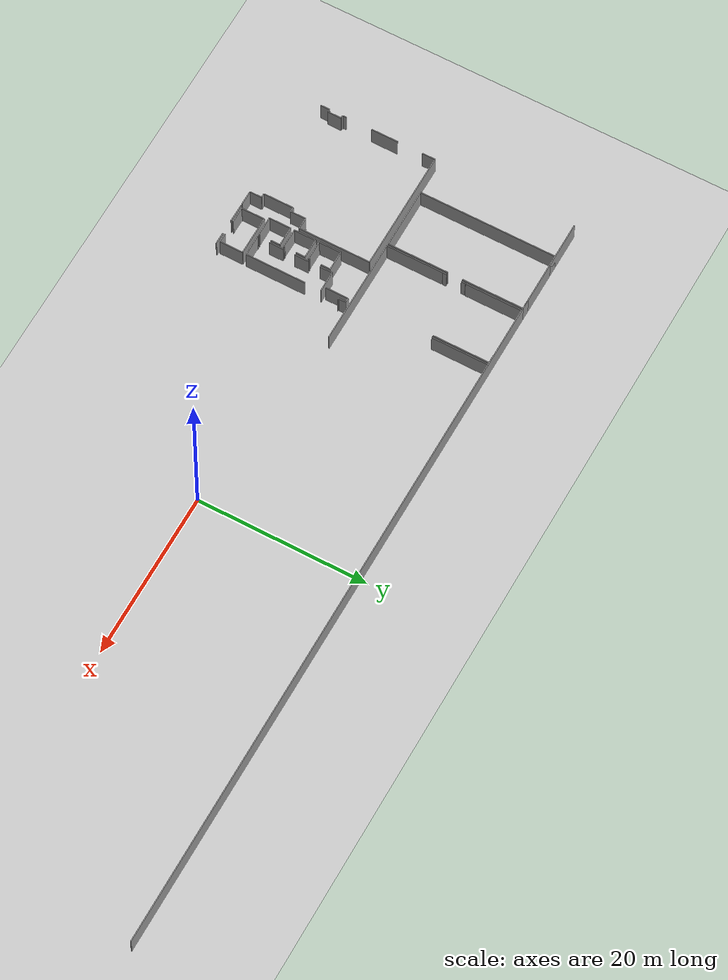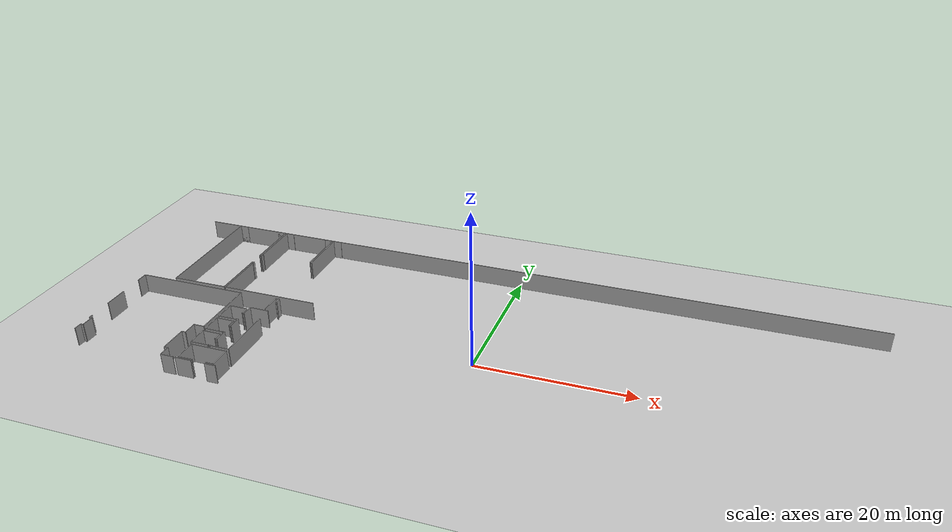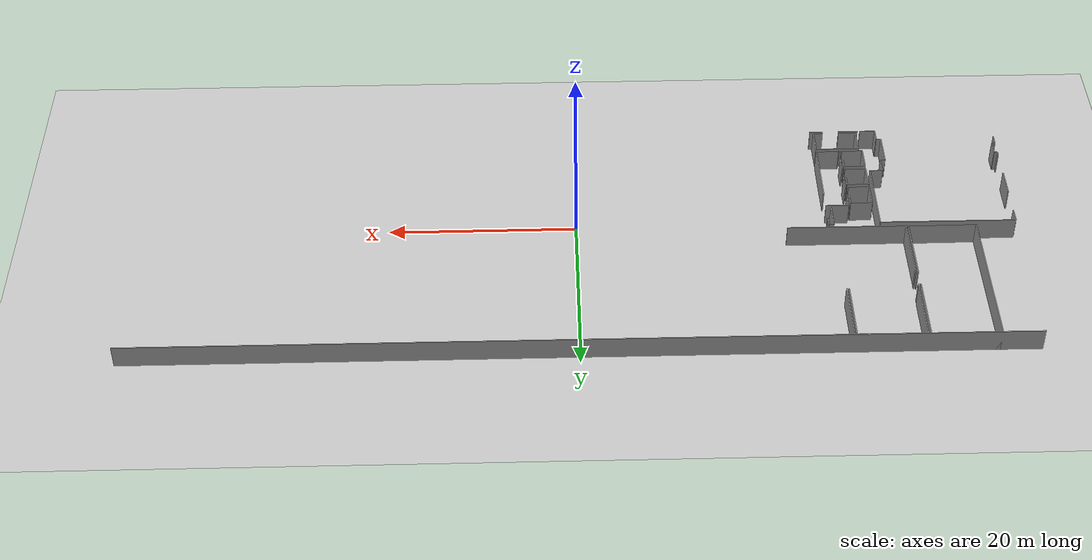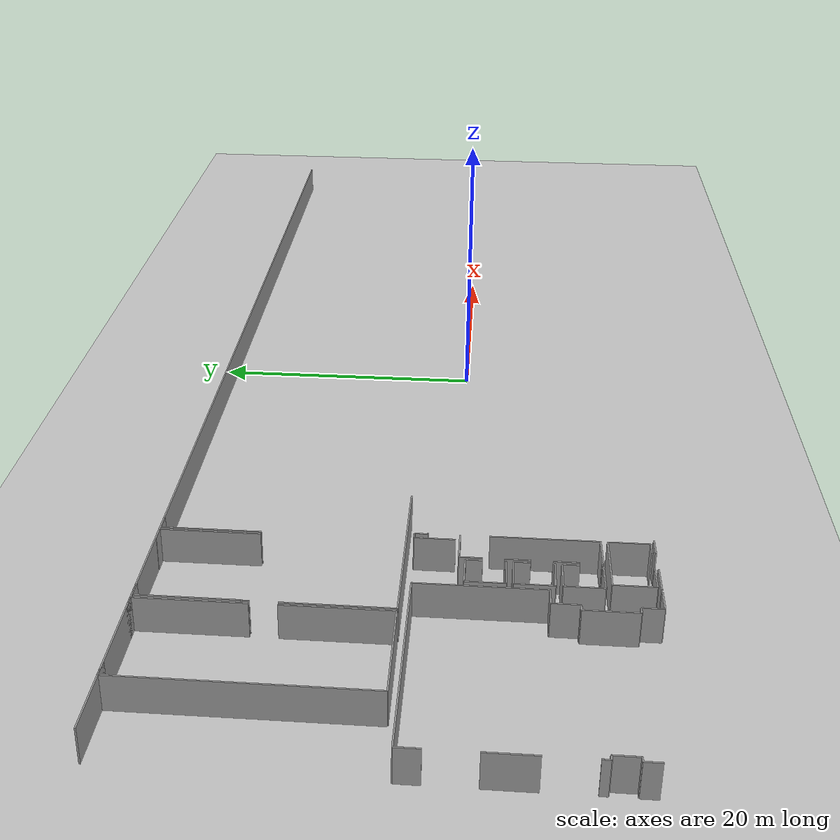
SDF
<sdf version="1.6">
 <world name="default">
  <model name="ground_plane">
   <static>1</static>
   <link name="link">
    <collision name="collision">
     <geometry><plane><normal>0 0 1</normal><size>100 100</size></plane></geometry>
     <surface><friction><ode><mu>100</mu><mu2>50</mu2></ode></friction></surface>
    </collision>
    <visual name="visual">
     <cast_shadows>0</cast_shadows>
     <geometry><plane><normal>0 0 1</normal><size>100 100</size></plane></geometry>
     <material>
      <script><uri>file://media/materials/scripts/gazebo.material</uri><name>Gazebo/Grey</name></script>
     </material>
    </visual>
   </link>
  </model>
  <model name="50045232">
   <static>1</static>
   <link name="Wall_0">
    <collision name="Wall_0_Collision">
     <geometry><box><size>16.1783140181 0.1 2.5</size></box></geometry>
     <pose>8.08915700905 0 1.25 0 0 0</pose>
    </collision>
    <visual name="Wall_0_Visual">
     <pose>8.08915700905 0 1.25 0 0 0</pose>
     <geometry><box><size>16.1783140181 0.1 2.5</size></box></geometry>
     <material>
      <script><uri>file://media/materials/scripts/gazebo.material</uri><name>Gazebo/Grey</name></script>
      <ambient>1 1 1 1</ambient>
     </material>
    </visual>
    <pose>4.34278456898 -16.1783140181 0 0 0 1.57079632679</pose>
   </link>
   <link name="Wall_1">
    <collision name="Wall_1_Collision">
     <geometry><box><size>1.17428163201 0.1 2.5</size></box></geometry>
     <pose>0.587140816003 0 1.25 0 0 0</pose>
    </collision>
    <visual name="Wall_1_Visual">
     <pose>0.587140816003 0 1.25 0 0 0</pose>
     <geometry><box><size>1.17428163201 0.1 2.5</size></box></geometry>
     <material>
      <script><uri>file://media/materials/scripts/gazebo.material</uri><name>Gazebo/Grey</name></script>
      <ambient>1 1 1 1</ambient>
     </material>
    </visual>
    <pose>4.34278456898 -0.0 0 0 0 0.0</pose>
   </link>
   <link name="Wall_2">
    <collision name="Wall_2_Collision">
     <geometry><box><size>1.14278456898 0.1 2.5</size></box></geometry>
     <pose>0.57139228449 0 1.25 0 0 0</pose>
    </collision>
    <visual name="Wall_2_Visual">
     <pose>0.57139228449 0 1.25 0 0 0</pose>
     <geometry><box><size>1.14278456898 0.1 2.5</size></box></geometry>
     <material>
      <script><uri>file://media/materials/scripts/gazebo.material</uri><name>Gazebo/Grey</name></script>
      <ambient>1 1 1 1</ambient>
     </material>
    </visual>
    <pose>10.4339101445 -0.0 0 0 0 0.0</pose>
   </link>
   <link name="Wall_3">
    <collision name="Wall_3_Collision">
     <geometry><box><size>7.18615653278 0.1 2.5</size></box></geometry>
     <pose>3.59307826639 0 1.25 0 0 0</pose>
    </collision>
    <visual name="Wall_3_Visual">
     <pose>3.59307826639 0 1.25 0 0 0</pose>
     <geometry><box><size>7.18615653278 0.1 2.5</size></box></geometry>
     <material>
      <script><uri>file://media/materials/scripts/gazebo.material</uri><name>Gazebo/Grey</name></script>
      <ambient>1 1 1 1</ambient>
     </material>
    </visual>
    <pose>11.5766947134 -0.0 0 0 0 -1.57079632679</pose>
   </link>
   <link name="Wall_4">
    <collision name="Wall_4_Collision">
     <geometry><box><size>7.16723289411 0.1 2.5</size></box></geometry>
     <pose>3.58361644706 0 1.25 0 0 0</pose>
    </collision>
    <visual name="Wall_4_Visual">
     <pose>3.58361644706 0 1.25 0 0 0</pose>
     <geometry><box><size>7.16723289411 0.1 2.5</size></box></geometry>
     <material>
      <script><uri>file://media/materials/scripts/gazebo.material</uri><name>Gazebo/Grey</name></script>
      <ambient>1 1 1 1</ambient>
     </material>
    </visual>
    <pose>11.5766947134 -8.95265915225 0 0 0 -1.57079632679</pose>
   </link>
   <link name="Wall_5">
    <collision name="Wall_5_Collision">
     <geometry><box><size>7.23414605223 0.1 2.5</size></box></geometry>
     <pose>3.61707302612 0 1.25 0 0 0</pose>
    </collision>
    <visual name="Wall_5_Visual">
     <pose>3.61707302612 0 1.25 0 0 0</pose>
     <geometry><box><size>7.23414605223 0.1 2.5</size></box></geometry>
     <material>
      <script><uri>file://media/materials/scripts/gazebo.material</uri><name>Gazebo/Grey</name></script>
      <ambient>1 1 1 1</ambient>
     </material>
    </visual>
    <pose>11.5766947134 -16.1198920464 0 0 0 -3.1335167029</pose>
   </link>
   <link name="Wall_6">
    <collision name="Wall_6_Collision">
     <geometry><box><size>6.65883473567 0.1 2.5</size></box></geometry>
     <pose>3.32941736784 0 1.25 0 0 0</pose>
    </collision>
    <visual name="Wall_6_Visual">
     <pose>3.32941736784 0 1.25 0 0 0</pose>
     <geometry><box><size>6.65883473567 0.1 2.5</size></box></geometry>
     <material>
      <script><uri>file://media/materials/scripts/gazebo.material</uri><name>Gazebo/Grey</name></script>
      <ambient>1 1 1 1</ambient>
     </material>
    </visual>
    <pose>11.8539450706 -6.68156850294 0 0 0 1.57079632679</pose>
   </link>
   <link name="Wall_7">
    <collision name="Wall_7_Collision">
     <geometry><box><size>1.09655500873 0.1 2.5</size></box></geometry>
     <pose>0.548277504366 0 1.25 0 0 0</pose>
    </collision>
    <visual name="Wall_7_Visual">
     <pose>0.548277504366 0 1.25 0 0 0</pose>
     <geometry><box><size>1.09655500873 0.1 2.5</size></box></geometry>
     <material>
      <script><uri>file://media/materials/scripts/gazebo.material</uri><name>Gazebo/Grey</name></script>
      <ambient>1 1 1 1</ambient>
     </material>
    </visual>
    <pose>11.8539450706 -0.0227337672646 0 0 0 0.0</pose>
   </link>
   <link name="Wall_8">
    <collision name="Wall_8_Collision">
     <geometry><box><size>1.11827274171 0.1 2.5</size></box></geometry>
     <pose>0.559136370853 0 1.25 0 0 0</pose>
    </collision>
    <visual name="Wall_8_Visual">
     <pose>0.559136370853 0 1.25 0 0 0</pose>
     <geometry><box><size>1.11827274171 0.1 2.5</size></box></geometry>
     <material>
      <script><uri>file://media/materials/scripts/gazebo.material</uri><name>Gazebo/Grey</name></script>
      <ambient>1 1 1 1</ambient>
     </material>
    </visual>
    <pose>17.9101444674 -0.0227337672646 0 0 0 0.0</pose>
   </link>
   <link name="Wall_9">
    <collision name="Wall_9_Collision">
     <geometry><box><size>6.6604857914 0.1 2.5</size></box></geometry>
     <pose>3.3302428957 0 1.25 0 0 0</pose>
    </collision>
    <visual name="Wall_9_Visual">
     <pose>3.3302428957 0 1.25 0 0 0</pose>
     <geometry><box><size>6.6604857914 0.1 2.5</size></box></geometry>
     <material>
      <script><uri>file://media/materials/scripts/gazebo.material</uri><name>Gazebo/Grey</name></script>
      <ambient>1 1 1 1</ambient>
     </material>
    </visual>
    <pose>19.0284172091 -0.0227337672646 0 0 0 -1.57079632679</pose>
   </link>
   <link name="Wall_10">
    <collision name="Wall_10_Collision">
     <geometry><box><size>6.67090014288 0.1 2.5</size></box></geometry>
     <pose>3.33545007144 0 1.25 0 0 0</pose>
    </collision>
    <visual name="Wall_10_Visual">
     <pose>3.33545007144 0 1.25 0 0 0</pose>
     <geometry><box><size>6.67090014288 0.1 2.5</size></box></geometry>
     <material>
      <script><uri>file://media/materials/scripts/gazebo.material</uri><name>Gazebo/Grey</name></script>
      <ambient>1 1 1 1</ambient>
     </material>
    </visual>
    <pose>19.2730274647 -6.69973011589 0 0 0 1.57079632679</pose>
   </link>
   <link name="Wall_11">
    <collision name="Wall_11_Collision">
     <geometry><box><size>1.14837275758 0.1 2.5</size></box></geometry>
     <pose>0.57418637879 0 1.25 0 0 0</pose>
    </collision>
    <visual name="Wall_11_Visual">
     <pose>0.57418637879 0 1.25 0 0 0</pose>
     <geometry><box><size>1.14837275758 0.1 2.5</size></box></geometry>
     <material>
      <script><uri>file://media/materials/scripts/gazebo.material</uri><name>Gazebo/Grey</name></script>
      <ambient>1 1 1 1</ambient>
     </material>
    </visual>
    <pose>19.2730274647 -0.0288299730116 0 0 0 0.0</pose>
   </link>
   <link name="Wall_30">
    <collision name="Wall_30_Collision">
     <geometry><box><size>0.428258453723 0.1 2.5</size></box></geometry>
     <pose>0.214129226861 0 1.25 0 0 0</pose>
    </collision>
    <visual name="Wall_30_Visual">
     <pose>0.214129226861 0 1.25 0 0 0</pose>
     <geometry><box><size>0.428258453723 0.1 2.5</size></box></geometry>
     <material>
      <script><uri>file://media/materials/scripts/gazebo.material</uri><name>Gazebo/Grey</name></script>
      <ambient>1 1 1 1</ambient>
     </material>
    </visual>
    <pose>11.8215589776 -9.40657247182 0 0 0 1.57079632679</pose>
   </link>
   <link name="Wall_31">
    <collision name="Wall_31_Collision">
     <geometry><box><size>0.451373233847 0.1 2.5</size></box></geometry>
     <pose>0.225686616923 0 1.25 0 0 0</pose>
    </collision>
    <visual name="Wall_31_Visual">
     <pose>0.225686616923 0 1.25 0 0 0</pose>
     <geometry><box><size>0.451373233847 0.1 2.5</size></box></geometry>
     <material>
      <script><uri>file://media/materials/scripts/gazebo.material</uri><name>Gazebo/Grey</name></script>
      <ambient>1 1 1 1</ambient>
     </material>
    </visual>
    <pose>11.8215589776 -7.21206540721 0 0 0 1.57079632679</pose>
   </link>
   <link name="Wall_108">
    <collision name="Wall_108_Collision">
     <geometry><box><size>6.68321955866 0.1 2.5</size></box></geometry>
     <pose>3.34160977933 0 1.25 0 0 0</pose>
    </collision>
    <visual name="Wall_108_Visual">
     <pose>3.34160977933 0 1.25 0 0 0</pose>
     <geometry><box><size>6.68321955866 0.1 2.5</size></box></geometry>
     <material>
      <script><uri>file://media/materials/scripts/gazebo.material</uri><name>Gazebo/Grey</name></script>
      <ambient>1 1 1 1</ambient>
     </material>
    </visual>
    <pose>11.8094935704 -9.4684235593 0 0 0 -1.57079632679</pose>
   </link>
   <link name="Wall_109">
    <collision name="Wall_109_Collision">
     <geometry><box><size>12.6319805029 0.1 2.5</size></box></geometry>
     <pose>6.31599025143 0 1.25 0 0 0</pose>
    </collision>
    <visual name="Wall_109_Visual">
     <pose>6.31599025143 0 1.25 0 0 0</pose>
     <geometry><box><size>12.6319805029 0.1 2.5</size></box></geometry>
     <material>
      <script><uri>file://media/materials/scripts/gazebo.material</uri><name>Gazebo/Grey</name></script>
      <ambient>1 1 1 1</ambient>
     </material>
    </visual>
    <pose>11.8094935704 -16.151643118 0 0 0 0.00106574395862</pose>
   </link>
   <link name="Wall_112">
    <collision name="Wall_112_Collision">
     <geometry><box><size>1.06607398 0.1 2.5</size></box></geometry>
     <pose>0.533036989998 0 1.25 0 0 0</pose>
    </collision>
    <visual name="Wall_112_Visual">
     <pose>0.533036989998 0 1.25 0 0 0</pose>
     <geometry><box><size>1.06607398 0.1 2.5</size></box></geometry>
     <material>
      <script><uri>file://media/materials/scripts/gazebo.material</uri><name>Gazebo/Grey</name></script>
      <ambient>1 1 1 1</ambient>
     </material>
    </visual>
    <pose>0.00139704715034 -30.7115415145 0 0 0 1.57079632679</pose>
   </link>
   <link name="Wall_113">
    <collision name="Wall_113_Collision">
     <geometry><box><size>0.339355453247 0.1 2.5</size></box></geometry>
     <pose>0.169677726623 0 1.25 0 0 0</pose>
    </collision>
    <visual name="Wall_113_Visual">
     <pose>0.169677726623 0 1.25 0 0 0</pose>
     <geometry><box><size>0.339355453247 0.1 2.5</size></box></geometry>
     <material>
      <script><uri>file://media/materials/scripts/gazebo.material</uri><name>Gazebo/Grey</name></script>
      <ambient>1 1 1 1</ambient>
     </material>
    </visual>
    <pose>0.00139704715034 -29.6454675345 0 0 0 0.0</pose>
   </link>
   <link name="Wall_114">
    <collision name="Wall_114_Collision">
     <geometry><box><size>1.58679155421 0.1 2.5</size></box></geometry>
     <pose>0.793395777107 0 1.25 0 0 0</pose>
    </collision>
    <visual name="Wall_114_Visual">
     <pose>0.793395777107 0 1.25 0 0 0</pose>
     <geometry><box><size>1.58679155421 0.1 2.5</size></box></geometry>
     <material>
      <script><uri>file://media/materials/scripts/gazebo.material</uri><name>Gazebo/Grey</name></script>
      <ambient>1 1 1 1</ambient>
     </material>
    </visual>
    <pose>0.340752500397 -29.6454675345 0 0 0 1.57079632679</pose>
   </link>
   <link name="Wall_115">
    <collision name="Wall_115_Collision">
     <geometry><box><size>0.340752500397 0.1 2.5</size></box></geometry>
     <pose>0.170376250198 0 1.25 0 0 0</pose>
    </collision>
    <visual name="Wall_115_Visual">
     <pose>0.170376250198 0 1.25 0 0 0</pose>
     <geometry><box><size>0.340752500397 0.1 2.5</size></box></geometry>
     <material>
      <script><uri>file://media/materials/scripts/gazebo.material</uri><name>Gazebo/Grey</name></script>
      <ambient>1 1 1 1</ambient>
     </material>
    </visual>
    <pose>0.340752500397 -28.0586759803 0 0 0 3.14159265359</pose>
   </link>
   <link name="Wall_116">
    <collision name="Wall_116_Collision">
     <geometry><box><size>0.505096046992 0.1 2.5</size></box></geometry>
     <pose>0.252548023496 0 1.25 0 0 0</pose>
    </collision>
    <visual name="Wall_116_Visual">
     <pose>0.252548023496 0 1.25 0 0 0</pose>
     <geometry><box><size>0.505096046992 0.1 2.5</size></box></geometry>
     <material>
      <script><uri>file://media/materials/scripts/gazebo.material</uri><name>Gazebo/Grey</name></script>
      <ambient>1 1 1 1</ambient>
     </material>
    </visual>
    <pose>0.0 -28.0586759803 0 0 0 1.57079632679</pose>
   </link>
   <link name="Wall_117">
    <collision name="Wall_117_Collision">
     <geometry><box><size>3.14107001111 0.1 2.5</size></box></geometry>
     <pose>1.57053500556 0 1.25 0 0 0</pose>
    </collision>
    <visual name="Wall_117_Visual">
     <pose>1.57053500556 0 1.25 0 0 0</pose>
     <geometry><box><size>3.14107001111 0.1 2.5</size></box></geometry>
     <material>
      <script><uri>file://media/materials/scripts/gazebo.material</uri><name>Gazebo/Grey</name></script>
      <ambient>1 1 1 1</ambient>
     </material>
    </visual>
    <pose>0.0 -24.4981108112 0 0 0 1.57079632679</pose>
   </link>
   <link name="Wall_118">
    <collision name="Wall_118_Collision">
     <geometry><box><size>1.52494046674 0.1 2.5</size></box></geometry>
     <pose>0.76247023337 0 1.25 0 0 0</pose>
    </collision>
    <visual name="Wall_118_Visual">
     <pose>0.76247023337 0 1.25 0 0 0</pose>
     <geometry><box><size>1.52494046674 0.1 2.5</size></box></geometry>
     <material>
      <script><uri>file://media/materials/scripts/gazebo.material</uri><name>Gazebo/Grey</name></script>
      <ambient>1 1 1 1</ambient>
     </material>
    </visual>
    <pose>0.0 -18.3145261153 0 0 0 1.57079632679</pose>
   </link>
   <link name="Wall_119">
    <collision name="Wall_119_Collision">
     <geometry><box><size>14.4688363232 0.1 2.5</size></box></geometry>
     <pose>7.23441816161 0 1.25 0 0 0</pose>
    </collision>
    <visual name="Wall_119_Visual">
     <pose>7.23441816161 0 1.25 0 0 0</pose>
     <geometry><box><size>14.4688363232 0.1 2.5</size></box></geometry>
     <material>
      <script><uri>file://media/materials/scripts/gazebo.material</uri><name>Gazebo/Grey</name></script>
      <ambient>1 1 1 1</ambient>
     </material>
    </visual>
    <pose>0.0 -16.7895856485 0 0 0 0.0</pose>
   </link>
   <link name="Wall_120">
    <collision name="Wall_120_Collision">
     <geometry><box><size>8.48363232259 0.1 2.5</size></box></geometry>
     <pose>4.2418161613 0 1.25 0 0 0</pose>
    </collision>
    <visual name="Wall_120_Visual">
     <pose>4.2418161613 0 1.25 0 0 0</pose>
     <geometry><box><size>8.48363232259 0.1 2.5</size></box></geometry>
     <material>
      <script><uri>file://media/materials/scripts/gazebo.material</uri><name>Gazebo/Grey</name></script>
      <ambient>1 1 1 1</ambient>
     </material>
    </visual>
    <pose>14.4688363232 -16.7895856485 0 0 0 -1.57079632679</pose>
   </link>
   <link name="Wall_121">
    <collision name="Wall_121_Collision">
     <geometry><box><size>1.3712652802 0.1 2.5</size></box></geometry>
     <pose>0.685632640102 0 1.25 0 0 0</pose>
    </collision>
    <visual name="Wall_121_Visual">
     <pose>0.685632640102 0 1.25 0 0 0</pose>
     <geometry><box><size>1.3712652802 0.1 2.5</size></box></geometry>
     <material>
      <script><uri>file://media/materials/scripts/gazebo.material</uri><name>Gazebo/Grey</name></script>
      <ambient>1 1 1 1</ambient>
     </material>
    </visual>
    <pose>14.4688363232 -25.2732179711 0 0 0 3.14159265359</pose>
   </link>
   <link name="Wall_122">
    <collision name="Wall_122_Collision">
     <geometry><box><size>1.81222416257 0.1 2.5</size></box></geometry>
     <pose>0.906112081283 0 1.25 0 0 0</pose>
    </collision>
    <visual name="Wall_122_Visual">
     <pose>0.906112081283 0 1.25 0 0 0</pose>
     <geometry><box><size>1.81222416257 0.1 2.5</size></box></geometry>
     <material>
      <script><uri>file://media/materials/scripts/gazebo.material</uri><name>Gazebo/Grey</name></script>
      <ambient>1 1 1 1</ambient>
     </material>
    </visual>
    <pose>13.097571043 -25.2732179711 0 0 0 -1.57079632679</pose>
   </link>
   <link name="Wall_123">
    <collision name="Wall_123_Collision">
     <geometry><box><size>0.517796475631 0.1 2.5</size></box></geometry>
     <pose>0.258898237816 0 1.25 0 0 0</pose>
    </collision>
    <visual name="Wall_123_Visual">
     <pose>0.258898237816 0 1.25 0 0 0</pose>
     <geometry><box><size>0.517796475631 0.1 2.5</size></box></geometry>
     <material>
      <script><uri>file://media/materials/scripts/gazebo.material</uri><name>Gazebo/Grey</name></script>
      <ambient>1 1 1 1</ambient>
     </material>
    </visual>
    <pose>13.097571043 -27.0854421337 0 0 0 3.14159265359</pose>
   </link>
   <link name="Wall_124">
    <collision name="Wall_124_Collision">
     <geometry><box><size>3.54964280044 0.1 2.5</size></box></geometry>
     <pose>1.77482140022 0 1.25 0 0 0</pose>
    </collision>
    <visual name="Wall_124_Visual">
     <pose>1.77482140022 0 1.25 0 0 0</pose>
     <geometry><box><size>3.54964280044 0.1 2.5</size></box></geometry>
     <material>
      <script><uri>file://media/materials/scripts/gazebo.material</uri><name>Gazebo/Grey</name></script>
      <ambient>1 1 1 1</ambient>
     </material>
    </visual>
    <pose>12.5797745674 -27.0854421337 0 0 0 -1.57079632679</pose>
   </link>
   <link name="Wall_125">
    <collision name="Wall_125_Collision">
     <geometry><box><size>0.504715034132 0.1 2.5</size></box></geometry>
     <pose>0.252357517066 0 1.25 0 0 0</pose>
    </collision>
    <visual name="Wall_125_Visual">
     <pose>0.252357517066 0 1.25 0 0 0</pose>
     <geometry><box><size>0.504715034132 0.1 2.5</size></box></geometry>
     <material>
      <script><uri>file://media/materials/scripts/gazebo.material</uri><name>Gazebo/Grey</name></script>
      <ambient>1 1 1 1</ambient>
     </material>
    </visual>
    <pose>12.5797745674 -30.6350849341 0 0 0 0.0</pose>
   </link>
   <link name="Wall_126">
    <collision name="Wall_126_Collision">
     <geometry><box><size>1.41978091761 0.1 2.5</size></box></geometry>
     <pose>0.709890458803 0 1.25 0 0 0</pose>
    </collision>
    <visual name="Wall_126_Visual">
     <pose>0.709890458803 0 1.25 0 0 0</pose>
     <geometry><box><size>1.41978091761 0.1 2.5</size></box></geometry>
     <material>
      <script><uri>file://media/materials/scripts/gazebo.material</uri><name>Gazebo/Grey</name></script>
      <ambient>1 1 1 1</ambient>
     </material>
    </visual>
    <pose>13.0844896015 -30.6350849341 0 0 0 -1.57079632679</pose>
   </link>
   <link name="Wall_127">
    <collision name="Wall_127_Collision">
     <geometry><box><size>1.6737894904 0.1 2.5</size></box></geometry>
     <pose>0.836894745198 0 1.25 0 0 0</pose>
    </collision>
    <visual name="Wall_127_Visual">
     <pose>0.836894745198 0 1.25 0 0 0</pose>
     <geometry><box><size>1.6737894904 0.1 2.5</size></box></geometry>
     <material>
      <script><uri>file://media/materials/scripts/gazebo.material</uri><name>Gazebo/Grey</name></script>
      <ambient>1 1 1 1</ambient>
     </material>
    </visual>
    <pose>13.0844896015 -32.0548658517 0 0 0 0.0</pose>
   </link>
   <link name="Wall_134">
    <collision name="Wall_134_Collision">
     <geometry><box><size>2.13964121289 0.1 2.5</size></box></geometry>
     <pose>1.06982060645 0 1.25 0 0 0</pose>
    </collision>
    <visual name="Wall_134_Visual">
     <pose>1.06982060645 0 1.25 0 0 0</pose>
     <geometry><box><size>2.13964121289 0.1 2.5</size></box></geometry>
     <material>
      <script><uri>file://media/materials/scripts/gazebo.material</uri><name>Gazebo/Grey</name></script>
      <ambient>1 1 1 1</ambient>
     </material>
    </visual>
    <pose>15.0116526433 -32.0463565645 0 0 0 0.0</pose>
   </link>
   <link name="Wall_135">
    <collision name="Wall_135_Collision">
     <geometry><box><size>1.43641847912 0.1 2.5</size></box></geometry>
     <pose>0.718209239562 0 1.25 0 0 0</pose>
    </collision>
    <visual name="Wall_135_Visual">
     <pose>0.718209239562 0 1.25 0 0 0</pose>
     <geometry><box><size>1.43641847912 0.1 2.5</size></box></geometry>
     <material>
      <script><uri>file://media/materials/scripts/gazebo.material</uri><name>Gazebo/Grey</name></script>
      <ambient>1 1 1 1</ambient>
     </material>
    </visual>
    <pose>18.9132243213 -32.0463565645 0 0 0 0.0</pose>
   </link>
   <link name="Wall_143">
    <collision name="Wall_143_Collision">
     <geometry><box><size>2.75573900619 0.1 2.5</size></box></geometry>
     <pose>1.3778695031 0 1.25 0 0 0</pose>
    </collision>
    <visual name="Wall_143_Visual">
     <pose>1.3778695031 0 1.25 0 0 0</pose>
     <geometry><box><size>2.75573900619 0.1 2.5</size></box></geometry>
     <material>
      <script><uri>file://media/materials/scripts/gazebo.material</uri><name>Gazebo/Grey</name></script>
      <ambient>1 1 1 1</ambient>
     </material>
    </visual>
    <pose>15.2723924432 -31.8291792348 0 0 0 1.57079632679</pose>
   </link>
   <link name="Wall_144">
    <collision name="Wall_144_Collision">
     <geometry><box><size>4.67642482934 0.1 2.5</size></box></geometry>
     <pose>2.33821241467 0 1.25 0 0 0</pose>
    </collision>
    <visual name="Wall_144_Visual">
     <pose>2.33821241467 0 1.25 0 0 0</pose>
     <geometry><box><size>4.67642482934 0.1 2.5</size></box></geometry>
     <material>
      <script><uri>file://media/materials/scripts/gazebo.material</uri><name>Gazebo/Grey</name></script>
      <ambient>1 1 1 1</ambient>
     </material>
    </visual>
    <pose>15.2723924432 -29.0734402286 0 0 0 0.0</pose>
   </link>
   <link name="Wall_145">
    <collision name="Wall_145_Collision">
     <geometry><box><size>2.73910144467 0.1 2.5</size></box></geometry>
     <pose>1.36955072234 0 1.25 0 0 0</pose>
    </collision>
    <visual name="Wall_145_Visual">
     <pose>1.36955072234 0 1.25 0 0 0</pose>
     <geometry><box><size>2.73910144467 0.1 2.5</size></box></geometry>
     <material>
      <script><uri>file://media/materials/scripts/gazebo.material</uri><name>Gazebo/Grey</name></script>
      <ambient>1 1 1 1</ambient>
     </material>
    </visual>
    <pose>19.9488172726 -29.0734402286 0 0 0 -1.57079632679</pose>
   </link>
   <link name="Wall_146">
    <collision name="Wall_146_Collision">
     <geometry><box><size>1.02721066836 0.1 2.5</size></box></geometry>
     <pose>0.51360533418 0 1.25 0 0 0</pose>
    </collision>
    <visual name="Wall_146_Visual">
     <pose>0.51360533418 0 1.25 0 0 0</pose>
     <geometry><box><size>1.02721066836 0.1 2.5</size></box></geometry>
     <material>
      <script><uri>file://media/materials/scripts/gazebo.material</uri><name>Gazebo/Grey</name></script>
      <ambient>1 1 1 1</ambient>
     </material>
    </visual>
    <pose>19.9488172726 -31.8125416733 0 0 0 3.14159265359</pose>
   </link>
   <link name="Wall_147">
    <collision name="Wall_147_Collision">
     <geometry><box><size>1.89713598158 0.1 2.5</size></box></geometry>
     <pose>0.94856799079 0 1.25 0 0 0</pose>
    </collision>
    <visual name="Wall_147_Visual">
     <pose>0.94856799079 0 1.25 0 0 0</pose>
     <geometry><box><size>1.89713598158 0.1 2.5</size></box></geometry>
     <material>
      <script><uri>file://media/materials/scripts/gazebo.material</uri><name>Gazebo/Grey</name></script>
      <ambient>1 1 1 1</ambient>
     </material>
    </visual>
    <pose>17.1694554691 -31.8125416733 0 0 0 -3.1328227104</pose>
   </link>
   <link name="Wall_163">
    <collision name="Wall_163_Collision">
     <geometry><box><size>2.694014923 0.1 2.5</size></box></geometry>
     <pose>1.3470074615 0 1.25 0 0 0</pose>
    </collision>
    <visual name="Wall_163_Visual">
     <pose>1.3470074615 0 1.25 0 0 0</pose>
     <geometry><box><size>2.694014923 0.1 2.5</size></box></geometry>
     <material>
      <script><uri>file://media/materials/scripts/gazebo.material</uri><name>Gazebo/Grey</name></script>
      <ambient>1 1 1 1</ambient>
     </material>
    </visual>
    <pose>19.4277186855 -19.3165899349 0 0 0 1.57079632679</pose>
   </link>
   <link name="Wall_164">
    <collision name="Wall_164_Collision">
     <geometry><box><size>0.486553421178 0.1 2.5</size></box></geometry>
     <pose>0.243276710589 0 1.25 0 0 0</pose>
    </collision>
    <visual name="Wall_164_Visual">
     <pose>0.243276710589 0 1.25 0 0 0</pose>
     <geometry><box><size>0.486553421178 0.1 2.5</size></box></geometry>
     <material>
      <script><uri>file://media/materials/scripts/gazebo.material</uri><name>Gazebo/Grey</name></script>
      <ambient>1 1 1 1</ambient>
     </material>
    </visual>
    <pose>19.4277186855 -16.6225750119 0 0 0 0.0</pose>
   </link>
   <link name="Wall_165">
    <collision name="Wall_165_Collision">
     <geometry><box><size>0.885854897603 0.1 2.5</size></box></geometry>
     <pose>0.442927448801 0 1.25 0 0 0</pose>
    </collision>
    <visual name="Wall_165_Visual">
     <pose>0.442927448801 0 1.25 0 0 0</pose>
     <geometry><box><size>0.885854897603 0.1 2.5</size></box></geometry>
     <material>
      <script><uri>file://media/materials/scripts/gazebo.material</uri><name>Gazebo/Grey</name></script>
      <ambient>1 1 1 1</ambient>
     </material>
    </visual>
    <pose>19.9142721067 -16.6225750119 0 0 0 -1.57079632679</pose>
   </link>
   <link name="Wall_166">
    <collision name="Wall_166_Collision">
     <geometry><box><size>0.145292903635 0.1 2.5</size></box></geometry>
     <pose>0.0726464518177 0 1.25 0 0 0</pose>
    </collision>
    <visual name="Wall_166_Visual">
     <pose>0.0726464518177 0 1.25 0 0 0</pose>
     <geometry><box><size>0.145292903635 0.1 2.5</size></box></geometry>
     <material>
      <script><uri>file://media/materials/scripts/gazebo.material</uri><name>Gazebo/Grey</name></script>
      <ambient>1 1 1 1</ambient>
     </material>
    </visual>
    <pose>19.9142721067 -17.5084299095 0 0 0 0.0</pose>
   </link>
   <link name="Wall_169">
    <collision name="Wall_169_Collision">
     <geometry><box><size>0.10744562629 0.1 2.5</size></box></geometry>
     <pose>0.0537228131449 0 1.25 0 0 0</pose>
    </collision>
    <visual name="Wall_169_Visual">
     <pose>0.0537228131449 0 1.25 0 0 0</pose>
     <geometry><box><size>0.10744562629 0.1 2.5</size></box></geometry>
     <material>
      <script><uri>file://media/materials/scripts/gazebo.material</uri><name>Gazebo/Grey</name></script>
      <ambient>1 1 1 1</ambient>
     </material>
    </visual>
    <pose>17.4924273694 -28.6577551992 0 0 0 1.57079632679</pose>
   </link>
   <link name="Wall_170">
    <collision name="Wall_170_Collision">
     <geometry><box><size>1.67886966185 0.1 2.5</size></box></geometry>
     <pose>0.839434830926 0 1.25 0 0 0</pose>
    </collision>
    <visual name="Wall_170_Visual">
     <pose>0.839434830926 0 1.25 0 0 0</pose>
     <geometry><box><size>1.67886966185 0.1 2.5</size></box></geometry>
     <material>
      <script><uri>file://media/materials/scripts/gazebo.material</uri><name>Gazebo/Grey</name></script>
      <ambient>1 1 1 1</ambient>
     </material>
    </visual>
    <pose>17.4924273694 -27.1953008414 0 0 0 1.57079632679</pose>
   </link>
   <link name="Wall_171">
    <collision name="Wall_171_Collision">
     <geometry><box><size>1.66286712177 0.1 2.5</size></box></geometry>
     <pose>0.831433560883 0 1.25 0 0 0</pose>
    </collision>
    <visual name="Wall_171_Visual">
     <pose>0.831433560883 0 1.25 0 0 0</pose>
     <geometry><box><size>1.66286712177 0.1 2.5</size></box></geometry>
     <material>
      <script><uri>file://media/materials/scripts/gazebo.material</uri><name>Gazebo/Grey</name></script>
      <ambient>1 1 1 1</ambient>
     </material>
    </visual>
    <pose>17.4924273694 -24.1309414193 0 0 0 1.57079632679</pose>
   </link>
   <link name="Wall_172">
    <collision name="Wall_172_Collision">
     <geometry><box><size>1.51770122242 0.1 2.5</size></box></geometry>
     <pose>0.758850611208 0 1.25 0 0 0</pose>
    </collision>
    <visual name="Wall_172_Visual">
     <pose>0.758850611208 0 1.25 0 0 0</pose>
     <geometry><box><size>1.51770122242 0.1 2.5</size></box></geometry>
     <material>
      <script><uri>file://media/materials/scripts/gazebo.material</uri><name>Gazebo/Grey</name></script>
      <ambient>1 1 1 1</ambient>
     </material>
    </visual>
    <pose>17.4924273694 -21.1101444674 0 0 0 1.57079632679</pose>
   </link>
   <link name="Wall_173">
    <collision name="Wall_173_Collision">
     <geometry><box><size>2.47264645182 0.1 2.5</size></box></geometry>
     <pose>1.23632322591 0 1.25 0 0 0</pose>
    </collision>
    <visual name="Wall_173_Visual">
     <pose>1.23632322591 0 1.25 0 0 0</pose>
     <geometry><box><size>2.47264645182 0.1 2.5</size></box></geometry>
     <material>
      <script><uri>file://media/materials/scripts/gazebo.material</uri><name>Gazebo/Grey</name></script>
      <ambient>1 1 1 1</ambient>
     </material>
    </visual>
    <pose>17.4924273694 -19.592443245 0 0 0 0.0</pose>
   </link>
   <link name="Wall_175">
    <collision name="Wall_175_Collision">
     <geometry><box><size>7.11274805525 0.1 2.5</size></box></geometry>
     <pose>3.55637402762 0 1.25 0 0 0</pose>
    </collision>
    <visual name="Wall_175_Visual">
     <pose>3.55637402762 0 1.25 0 0 0</pose>
     <geometry><box><size>7.11274805525 0.1 2.5</size></box></geometry>
     <material>
      <script><uri>file://media/materials/scripts/gazebo.material</uri><name>Gazebo/Grey</name></script>
      <ambient>1 1 1 1</ambient>
     </material>
    </visual>
    <pose>19.9650738212 -21.5098269567 0 0 0 -1.57079632679</pose>
   </link>
   <link name="Wall_176">
    <collision name="Wall_176_Collision">
     <geometry><box><size>2.47289670655 0.1 2.5</size></box></geometry>
     <pose>1.23644835328 0 1.25 0 0 0</pose>
    </collision>
    <visual name="Wall_176_Visual">
     <pose>1.23644835328 0 1.25 0 0 0</pose>
     <geometry><box><size>2.47289670655 0.1 2.5</size></box></geometry>
     <material>
      <script><uri>file://media/materials/scripts/gazebo.material</uri><name>Gazebo/Grey</name></script>
      <ambient>1 1 1 1</ambient>
     </material>
    </visual>
    <pose>19.9650738212 -28.6225750119 0 0 0 -3.12736586683</pose>
   </link>
   <link name="Wall_177">
    <collision name="Wall_177_Collision">
     <geometry><box><size>2.6081600254 0.1 2.5</size></box></geometry>
     <pose>1.3040800127 0 1.25 0 0 0</pose>
    </collision>
    <visual name="Wall_177_Visual">
     <pose>1.3040800127 0 1.25 0 0 0</pose>
     <geometry><box><size>2.6081600254 0.1 2.5</size></box></geometry>
     <material>
      <script><uri>file://media/materials/scripts/gazebo.material</uri><name>Gazebo/Grey</name></script>
      <ambient>1 1 1 1</ambient>
     </material>
    </visual>
    <pose>14.9073821241 -22.6063819654 0 0 0 1.57079632679</pose>
   </link>
   <link name="Wall_178">
    <collision name="Wall_178_Collision">
     <geometry><box><size>2.3225273853 0.1 2.5</size></box></geometry>
     <pose>1.16126369265 0 1.25 0 0 0</pose>
    </collision>
    <visual name="Wall_178_Visual">
     <pose>1.16126369265 0 1.25 0 0 0</pose>
     <geometry><box><size>2.3225273853 0.1 2.5</size></box></geometry>
     <material>
      <script><uri>file://media/materials/scripts/gazebo.material</uri><name>Gazebo/Grey</name></script>
      <ambient>1 1 1 1</ambient>
     </material>
    </visual>
    <pose>14.9073821241 -19.99822194 0 0 0 0.0</pose>
   </link>
   <link name="Wall_179">
    <collision name="Wall_179_Collision">
     <geometry><box><size>1.09820606445 0.1 2.5</size></box></geometry>
     <pose>0.549103032227 0 1.25 0 0 0</pose>
    </collision>
    <visual name="Wall_179_Visual">
     <pose>0.549103032227 0 1.25 0 0 0</pose>
     <geometry><box><size>1.09820606445 0.1 2.5</size></box></geometry>
     <material>
      <script><uri>file://media/materials/scripts/gazebo.material</uri><name>Gazebo/Grey</name></script>
      <ambient>1 1 1 1</ambient>
     </material>
    </visual>
    <pose>17.2299095094 -19.99822194 0 0 0 -1.57079632679</pose>
   </link>
   <link name="Wall_180">
    <collision name="Wall_180_Collision">
     <geometry><box><size>0.132592474996 0.1 2.5</size></box></geometry>
     <pose>0.066296237498 0 1.25 0 0 0</pose>
    </collision>
    <visual name="Wall_180_Visual">
     <pose>0.066296237498 0 1.25 0 0 0</pose>
     <geometry><box><size>0.132592474996 0.1 2.5</size></box></geometry>
     <material>
      <script><uri>file://media/materials/scripts/gazebo.material</uri><name>Gazebo/Grey</name></script>
      <ambient>1 1 1 1</ambient>
     </material>
    </visual>
    <pose>17.2299095094 -22.4633751389 0 0 0 -1.57079632679</pose>
   </link>
   <link name="Wall_181">
    <collision name="Wall_181_Collision">
     <geometry><box><size>2.32255073447 0.1 2.5</size></box></geometry>
     <pose>1.16127536723 0 1.25 0 0 0</pose>
    </collision>
    <visual name="Wall_181_Visual">
     <pose>1.16127536723 0 1.25 0 0 0</pose>
     <geometry><box><size>2.32255073447 0.1 2.5</size></box></geometry>
     <material>
      <script><uri>file://media/materials/scripts/gazebo.material</uri><name>Gazebo/Grey</name></script>
      <ambient>1 1 1 1</ambient>
     </material>
    </visual>
    <pose>17.2299095094 -22.5959676139 0 0 0 -3.13710862393</pose>
   </link>
   <link name="Wall_182">
    <collision name="Wall_182_Collision">
     <geometry><box><size>2.58034608668 0.1 2.5</size></box></geometry>
     <pose>1.29017304334 0 1.25 0 0 0</pose>
    </collision>
    <visual name="Wall_182_Visual">
     <pose>1.29017304334 0 1.25 0 0 0</pose>
     <geometry><box><size>2.58034608668 0.1 2.5</size></box></geometry>
     <material>
      <script><uri>file://media/materials/scripts/gazebo.material</uri><name>Gazebo/Grey</name></script>
      <ambient>1 1 1 1</ambient>
     </material>
    </visual>
    <pose>14.9049690427 -25.6162565487 0 0 0 1.57079632679</pose>
   </link>
   <link name="Wall_183">
    <collision name="Wall_183_Collision">
     <geometry><box><size>2.32976662962 0.1 2.5</size></box></geometry>
     <pose>1.16488331481 0 1.25 0 0 0</pose>
    </collision>
    <visual name="Wall_183_Visual">
     <pose>1.16488331481 0 1.25 0 0 0</pose>
     <geometry><box><size>2.32976662962 0.1 2.5</size></box></geometry>
     <material>
      <script><uri>file://media/materials/scripts/gazebo.material</uri><name>Gazebo/Grey</name></script>
      <ambient>1 1 1 1</ambient>
     </material>
    </visual>
    <pose>14.9049690427 -23.035910462 0 0 0 0.0</pose>
   </link>
   <link name="Wall_184">
    <collision name="Wall_184_Collision">
     <geometry><box><size>1.0772503572 0.1 2.5</size></box></geometry>
     <pose>0.5386251786 0 1.25 0 0 0</pose>
    </collision>
    <visual name="Wall_184_Visual">
     <pose>0.5386251786 0 1.25 0 0 0</pose>
     <geometry><box><size>1.0772503572 0.1 2.5</size></box></geometry>
     <material>
      <script><uri>file://media/materials/scripts/gazebo.material</uri><name>Gazebo/Grey</name></script>
      <ambient>1 1 1 1</ambient>
     </material>
    </visual>
    <pose>17.2347356723 -23.035910462 0 0 0 -1.57079632679</pose>
   </link>
   <link name="Wall_185">
    <collision name="Wall_185_Collision">
     <geometry><box><size>0.141990792189 0.1 2.5</size></box></geometry>
     <pose>0.0709953960946 0 1.25 0 0 0</pose>
    </collision>
    <visual name="Wall_185_Visual">
     <pose>0.0709953960946 0 1.25 0 0 0</pose>
     <geometry><box><size>0.141990792189 0.1 2.5</size></box></geometry>
     <material>
      <script><uri>file://media/materials/scripts/gazebo.material</uri><name>Gazebo/Grey</name></script>
      <ambient>1 1 1 1</ambient>
     </material>
    </visual>
    <pose>17.2347356723 -25.4910303223 0 0 0 -1.57079632679</pose>
   </link>
   <link name="Wall_186">
    <collision name="Wall_186_Collision">
     <geometry><box><size>2.32982694619 0.1 2.5</size></box></geometry>
     <pose>1.16491347309 0 1.25 0 0 0</pose>
    </collision>
    <visual name="Wall_186_Visual">
     <pose>1.16491347309 0 1.25 0 0 0</pose>
     <geometry><box><size>2.32982694619 0.1 2.5</size></box></geometry>
     <material>
      <script><uri>file://media/materials/scripts/gazebo.material</uri><name>Gazebo/Grey</name></script>
      <ambient>1 1 1 1</ambient>
     </material>
    </visual>
    <pose>17.2347356723 -25.6330211145 0 0 0 3.13439696444</pose>
   </link>
   <link name="Wall_187">
    <collision name="Wall_187_Collision">
     <geometry><box><size>2.58898237816 0.1 2.5</size></box></geometry>
     <pose>1.29449118908 0 1.25 0 0 0</pose>
    </collision>
    <visual name="Wall_187_Visual">
     <pose>1.29449118908 0 1.25 0 0 0</pose>
     <geometry><box><size>2.58898237816 0.1 2.5</size></box></geometry>
     <material>
      <script><uri>file://media/materials/scripts/gazebo.material</uri><name>Gazebo/Grey</name></script>
      <ambient>1 1 1 1</ambient>
     </material>
    </visual>
    <pose>14.8995078584 -28.6660104779 0 0 0 1.57079632679</pose>
   </link>
   <link name="Wall_188">
    <collision name="Wall_188_Collision">
     <geometry><box><size>2.31351008097 0.1 2.5</size></box></geometry>
     <pose>1.15675504048 0 1.25 0 0 0</pose>
    </collision>
    <visual name="Wall_188_Visual">
     <pose>1.15675504048 0 1.25 0 0 0</pose>
     <geometry><box><size>2.31351008097 0.1 2.5</size></box></geometry>
     <material>
      <script><uri>file://media/materials/scripts/gazebo.material</uri><name>Gazebo/Grey</name></script>
      <ambient>1 1 1 1</ambient>
     </material>
    </visual>
    <pose>14.8995078584 -26.0770280997 0 0 0 0.0</pose>
   </link>
   <link name="Wall_189">
    <collision name="Wall_189_Collision">
     <geometry><box><size>1.11103349738 0.1 2.5</size></box></geometry>
     <pose>0.55551674869 0 1.25 0 0 0</pose>
    </collision>
    <visual name="Wall_189_Visual">
     <pose>0.55551674869 0 1.25 0 0 0</pose>
     <geometry><box><size>1.11103349738 0.1 2.5</size></box></geometry>
     <material>
      <script><uri>file://media/materials/scripts/gazebo.material</uri><name>Gazebo/Grey</name></script>
      <ambient>1 1 1 1</ambient>
     </material>
    </visual>
    <pose>17.2130179394 -26.0770280997 0 0 0 -1.57079632679</pose>
   </link>
   <link name="Wall_190">
    <collision name="Wall_190_Collision">
     <geometry><box><size>0.100968407684 0.1 2.5</size></box></geometry>
     <pose>0.0504842038419 0 1.25 0 0 0</pose>
    </collision>
    <visual name="Wall_190_Visual">
     <pose>0.0504842038419 0 1.25 0 0 0</pose>
     <geometry><box><size>0.100968407684 0.1 2.5</size></box></geometry>
     <material>
      <script><uri>file://media/materials/scripts/gazebo.material</uri><name>Gazebo/Grey</name></script>
      <ambient>1 1 1 1</ambient>
     </material>
    </visual>
    <pose>17.2130179394 -28.5440863629 0 0 0 -1.57079632679</pose>
   </link>
   <link name="Wall_191">
    <collision name="Wall_191_Collision">
     <geometry><box><size>2.31360498711 0.1 2.5</size></box></geometry>
     <pose>1.15680249356 0 1.25 0 0 0</pose>
    </collision>
    <visual name="Wall_191_Visual">
     <pose>1.15680249356 0 1.25 0 0 0</pose>
     <geometry><box><size>2.31360498711 0.1 2.5</size></box></geometry>
     <material>
      <script><uri>file://media/materials/scripts/gazebo.material</uri><name>Gazebo/Grey</name></script>
      <ambient>1 1 1 1</ambient>
     </material>
    </visual>
    <pose>17.2130179394 -28.6450547706 0 0 0 -3.13253493029</pose>
   </link>
   <link name="Wall_394">
    <collision name="Wall_394_Collision">
     <geometry><box><size>93.5758691856 0.1 2.5</size></box></geometry>
     <pose>46.7879345928 0 1.25 0 0 0</pose>
    </collision>
    <visual name="Wall_394_Visual">
     <pose>46.7879345928 0 1.25 0 0 0</pose>
     <geometry><box><size>93.5758691856 0.1 2.5</size></box></geometry>
     <material>
      <script><uri>file://media/materials/scripts/gazebo.material</uri><name>Gazebo/Grey</name></script>
      <ambient>1 1 1 1</ambient>
     </material>
    </visual>
   </link>
   <pose>-46.75 19.2201063661 0 0 0 0</pose>
  </model>
 </world>
</sdf>
